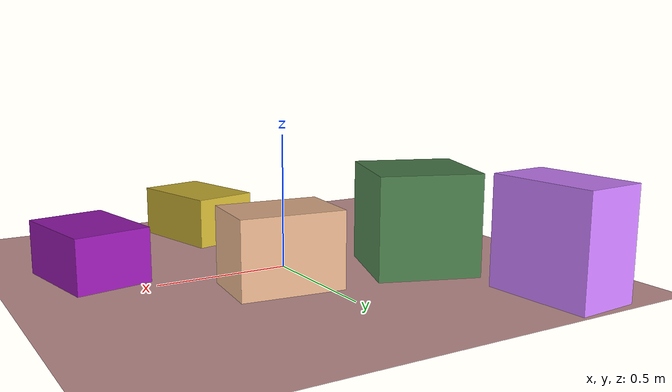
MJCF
<mujoco>
   <asset>
<texture type="skybox" builtin="gradient" rgb1="0.2 0.6 0.6" rgb2="0.4 0.0 0.7" width="500" height="500"/>
<texture name="gradient_0" builtin="gradient" rgb1="0.9 0.8 0.9" rgb2="0.9 0.6 0.2" width="500" height="500"/>
<texture name="flat_1" builtin="flat" rgb1="0.8 0.7 0.2" rgb2="0.8 0.7 0.2"  width="500" height="500"/>
<texture name="flat_2" builtin="flat" rgb1="0.6 0.1 0.7" rgb2="0.6 0.1 0.7"  width="500" height="500"/>
<texture name="flat_3" builtin="flat" rgb1="0.8 0.5 1.0" rgb2="0.8 0.5 1.0"  width="500" height="500"/>
<texture name="flat_4" builtin="flat" rgb1="0.3 0.5 0.3" rgb2="0.3 0.5 0.3"  width="500" height="500"/><material name="gradient_0_mat" reflectance="0.4156362072358768" texture="gradient_0" texuniform="true"/>
<material name="flat_1_mat" reflectance="0.47445907488329386" texture="flat_1" texuniform="true"/>
<material name="flat_2_mat" reflectance="0.9731913024199638" texture="flat_2" texuniform="true"/>
<material name="flat_3_mat" reflectance="0.5873946061754752" texture="flat_3" texuniform="true"/>
<material name="flat_4_mat" reflectance="0.3210974310615603" texture="flat_4" texuniform="true"/>
   </asset>

   <worldbody>
     <geom type="plane" size="1 1 0.1" rgba="0.8 0.6 0.6 1" />
<light pos="-0.41610250643770796 -0.833677180187576 2" dir="0 0 -1" cutoff="90" diffuse="1 1 1" specular="1 1 1"/>
<geom type="box" pos="0.13 0.22 0.14" size="0.13 0.19 0.14" material="gradient_0_mat" euler="0 0 84" />
<geom type="box" pos="0.08 -0.63 0.1" size="0.13 0.2 0.1" material="flat_1_mat" euler="0 0 13" />
<geom type="box" pos="0.67 -0.22 0.1" size="0.14 0.19 0.1" material="flat_2_mat" euler="0 0 10" />
<geom type="box" pos="-0.63 0.78 0.2" size="0.12 0.2 0.2" material="flat_3_mat" euler="0 0 4" />
<geom type="box" pos="-0.43 0.25 0.19" size="0.19 0.19 0.19" material="flat_4_mat" euler="0 0 70" /><camera euler="60 0 180" fovy="60" name="camera1" pos="-0.2 -1.5 1"></camera>   </worldbody>
   <visual>
      <headlight diffuse="0.7 0.7 0.7"/>
   </visual>
</mujoco>
